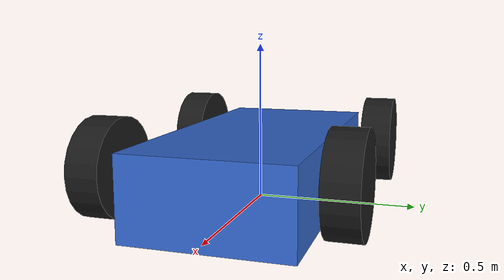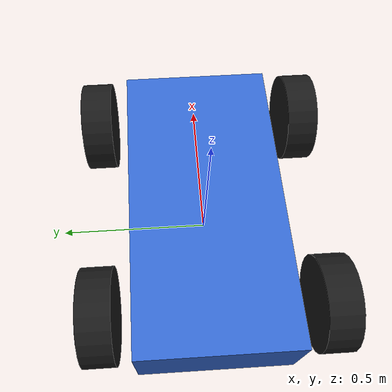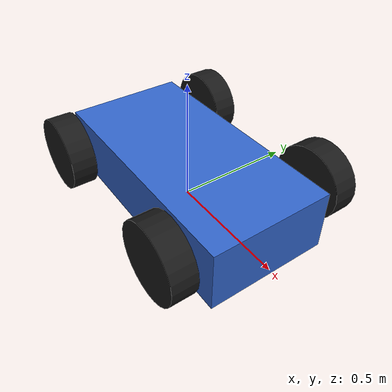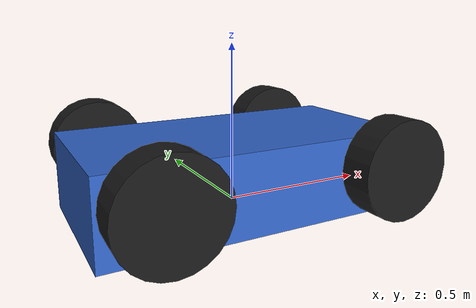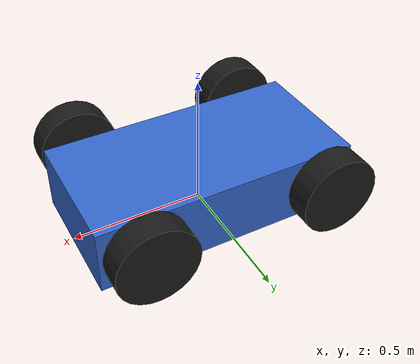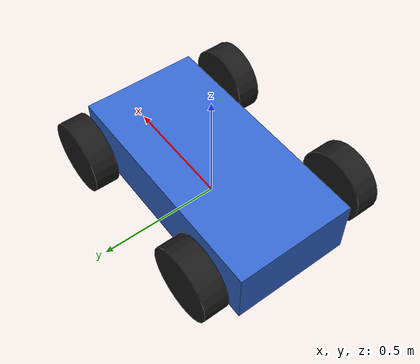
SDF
<?xml version="1.0" ?>
<!--
  Simple Ackermann-steered ego vehicle for ADAS smoke tests.

  Control topic: /model/ego_vehicle/cmd_vel (gz.msgs.Twist)
  Odometry topic: /model/ego_vehicle/odometry (gz.msgs.Odometry)
-->
<sdf version="1.6">
  <model name="ego_vehicle">
    <pose>0 0 0 0 0 0</pose>

    <link name="chassis">
      <pose>0 0 0.1 0 0 0</pose>
      <inertial>
        <mass>5.0</mass>
        <inertia>
          <ixx>0.1</ixx>
          <ixy>0</ixy>
          <ixz>0</ixz>
          <iyy>0.2</iyy>
          <iyz>0</iyz>
          <izz>0.3</izz>
        </inertia>
      </inertial>
      <visual name="visual">
        <geometry>
          <box>
            <size>1.0 0.5 0.25</size>
          </box>
        </geometry>
        <material>
          <ambient>0.2 0.4 0.8 1</ambient>
          <diffuse>0.2 0.4 0.8 1</diffuse>
          <specular>0.1 0.1 0.1 1</specular>
        </material>
      </visual>
      <collision name="collision">
        <geometry>
          <box>
            <size>1.0 0.5 0.25</size>
          </box>
        </geometry>
      </collision>
    </link>

    <link name="front_left_wheel">
      <pose>0.35 0.35 0.15 -1.5707 0 0</pose>
      <inertial>
        <mass>0.5</mass>
        <inertia>
          <ixx>0.005</ixx>
          <ixy>0</ixy>
          <ixz>0</ixz>
          <iyy>0.005</iyy>
          <iyz>0</iyz>
          <izz>0.004</izz>
        </inertia>
      </inertial>
      <visual name="visual">
        <geometry>
          <cylinder>
            <length>0.1</length>
            <radius>0.15</radius>
          </cylinder>
        </geometry>
        <material>
          <ambient>0.1 0.1 0.1 1</ambient>
          <diffuse>0.1 0.1 0.1 1</diffuse>
          <specular>0.1 0.1 0.1 1</specular>
        </material>
      </visual>
      <collision name="collision">
        <geometry>
          <cylinder>
            <length>0.1</length>
            <radius>0.15</radius>
          </cylinder>
        </geometry>
        <surface>
          <friction>
            <ode>
              <mu>0.8</mu>
              <mu2>0.8</mu2>
              <fdir1>0 0 1</fdir1>
            </ode>
          </friction>
        </surface>
      </collision>
    </link>

    <link name="front_right_wheel">
      <pose>0.35 -0.35 0.15 -1.5707 0 0</pose>
      <inertial>
        <mass>0.5</mass>
        <inertia>
          <ixx>0.005</ixx>
          <ixy>0</ixy>
          <ixz>0</ixz>
          <iyy>0.005</iyy>
          <iyz>0</iyz>
          <izz>0.004</izz>
        </inertia>
      </inertial>
      <visual name="visual">
        <geometry>
          <cylinder>
            <length>0.1</length>
            <radius>0.15</radius>
          </cylinder>
        </geometry>
        <material>
          <ambient>0.1 0.1 0.1 1</ambient>
          <diffuse>0.1 0.1 0.1 1</diffuse>
          <specular>0.1 0.1 0.1 1</specular>
        </material>
      </visual>
      <collision name="collision">
        <geometry>
          <cylinder>
            <length>0.1</length>
            <radius>0.15</radius>
          </cylinder>
        </geometry>
        <surface>
          <friction>
            <ode>
              <mu>0.8</mu>
              <mu2>0.8</mu2>
              <fdir1>0 0 1</fdir1>
            </ode>
          </friction>
        </surface>
      </collision>
    </link>

    <link name="rear_left_wheel">
      <pose>-0.35 0.35 0.15 -1.5707 0 0</pose>
      <inertial>
        <mass>0.5</mass>
        <inertia>
          <ixx>0.005</ixx>
          <ixy>0</ixy>
          <ixz>0</ixz>
          <iyy>0.005</iyy>
          <iyz>0</iyz>
          <izz>0.004</izz>
        </inertia>
      </inertial>
      <visual name="visual">
        <geometry>
          <cylinder>
            <length>0.1</length>
            <radius>0.15</radius>
          </cylinder>
        </geometry>
        <material>
          <ambient>0.1 0.1 0.1 1</ambient>
          <diffuse>0.1 0.1 0.1 1</diffuse>
          <specular>0.1 0.1 0.1 1</specular>
        </material>
      </visual>
      <collision name="collision">
        <geometry>
          <cylinder>
            <length>0.1</length>
            <radius>0.15</radius>
          </cylinder>
        </geometry>
        <surface>
          <friction>
            <ode>
              <mu>0.8</mu>
              <mu2>0.8</mu2>
              <fdir1>0 0 1</fdir1>
            </ode>
          </friction>
        </surface>
      </collision>
    </link>

    <link name="rear_right_wheel">
      <pose>-0.35 -0.35 0.15 -1.5707 0 0</pose>
      <inertial>
        <mass>0.5</mass>
        <inertia>
          <ixx>0.005</ixx>
          <ixy>0</ixy>
          <ixz>0</ixz>
          <iyy>0.005</iyy>
          <iyz>0</iyz>
          <izz>0.004</izz>
        </inertia>
      </inertial>
      <visual name="visual">
        <geometry>
          <cylinder>
            <length>0.1</length>
            <radius>0.15</radius>
          </cylinder>
        </geometry>
        <material>
          <ambient>0.1 0.1 0.1 1</ambient>
          <diffuse>0.1 0.1 0.1 1</diffuse>
          <specular>0.1 0.1 0.1 1</specular>
        </material>
      </visual>
      <collision name="collision">
        <geometry>
          <cylinder>
            <length>0.1</length>
            <radius>0.15</radius>
          </cylinder>
        </geometry>
        <surface>
          <friction>
            <ode>
              <mu>0.8</mu>
              <mu2>0.8</mu2>
              <fdir1>0 0 1</fdir1>
            </ode>
          </friction>
        </surface>
      </collision>
    </link>

    <link name="front_left_steering_link">
      <pose>0.35 0.25 0.15 0 0 0</pose>
      <inertial>
        <mass>0.1</mass>
        <inertia>
          <ixx>0.001</ixx>
          <iyy>0.001</iyy>
          <izz>0.001</izz>
        </inertia>
      </inertial>
    </link>

    <link name="front_right_steering_link">
      <pose>0.35 -0.25 0.15 0 0 0</pose>
      <inertial>
        <mass>0.1</mass>
        <inertia>
          <ixx>0.001</ixx>
          <iyy>0.001</iyy>
          <izz>0.001</izz>
        </inertia>
      </inertial>
    </link>

    <joint name="front_left_steering_joint" type="revolute">
      <parent>chassis</parent>
      <child>front_left_steering_link</child>
      <axis>
        <xyz>0 0 1</xyz>
        <limit>
          <lower>-0.6</lower>
          <upper>0.6</upper>
          <velocity>2.0</velocity>
          <effort>10</effort>
        </limit>
        <use_parent_model_frame>1</use_parent_model_frame>
      </axis>
    </joint>

    <joint name="front_right_steering_joint" type="revolute">
      <parent>chassis</parent>
      <child>front_right_steering_link</child>
      <axis>
        <xyz>0 0 1</xyz>
        <limit>
          <lower>-0.6</lower>
          <upper>0.6</upper>
          <velocity>2.0</velocity>
          <effort>10</effort>
        </limit>
        <use_parent_model_frame>1</use_parent_model_frame>
      </axis>
    </joint>

    <joint name="front_left_wheel_joint" type="revolute">
      <parent>front_left_steering_link</parent>
      <child>front_left_wheel</child>
      <axis>
        <xyz>0 0 1</xyz>
        <limit>
          <lower>-1e+16</lower>
          <upper>1e+16</upper>
        </limit>
      </axis>
    </joint>

    <joint name="front_right_wheel_joint" type="revolute">
      <parent>front_right_steering_link</parent>
      <child>front_right_wheel</child>
      <axis>
        <xyz>0 0 1</xyz>
        <limit>
          <lower>-1e+16</lower>
          <upper>1e+16</upper>
        </limit>
      </axis>
    </joint>

    <joint name="rear_left_wheel_joint" type="revolute">
      <parent>chassis</parent>
      <child>rear_left_wheel</child>
      <axis>
        <xyz>0 0 1</xyz>
        <limit>
          <lower>-1e+16</lower>
          <upper>1e+16</upper>
        </limit>
      </axis>
    </joint>

    <joint name="rear_right_wheel_joint" type="revolute">
      <parent>chassis</parent>
      <child>rear_right_wheel</child>
      <axis>
        <xyz>0 0 1</xyz>
        <limit>
          <lower>-1e+16</lower>
          <upper>1e+16</upper>
        </limit>
      </axis>
    </joint>

    <!-- Front-facing camera -->
    <link name="camera_link">
      <pose>0.45 0 0.25 0 0 0</pose>
      <inertial>
        <mass>0.05</mass>
        <inertia>
          <ixx>0.0001</ixx>
          <ixy>0</ixy>
          <ixz>0</ixz>
          <iyy>0.0001</iyy>
          <iyz>0</iyz>
          <izz>0.0001</izz>
        </inertia>
      </inertial>
      <sensor name="front_camera" type="camera">
        <always_on>1</always_on>
        <update_rate>30</update_rate>
        <camera>
          <horizontal_fov>1.3962634</horizontal_fov>
          <image>
            <width>640</width>
            <height>480</height>
            <format>R8G8B8</format>
          </image>
          <clip>
            <near>0.1</near>
            <far>100</far>
          </clip>
        </camera>
      </sensor>
    </link>
    <joint name="camera_joint" type="fixed">
      <parent>chassis</parent>
      <child>camera_link</child>
    </joint>

    <!-- Roof-mounted lidar -->
    <link name="lidar_link">
      <pose>0.0 0 0.35 0 0 0</pose>
      <inertial>
        <mass>0.05</mass>
        <inertia>
          <ixx>0.0001</ixx>
          <ixy>0</ixy>
          <ixz>0</ixz>
          <iyy>0.0001</iyy>
          <iyz>0</iyz>
          <izz>0.0001</izz>
        </inertia>
      </inertial>
      <sensor name="front_lidar" type="gpu_lidar">
        <always_on>1</always_on>
        <update_rate>10</update_rate>
        <lidar>
          <scan>
            <horizontal>
              <samples>360</samples>
              <resolution>1</resolution>
              <min_angle>-3.14159</min_angle>
              <max_angle>3.14159</max_angle>
            </horizontal>
            <vertical>
              <samples>1</samples>
              <resolution>1</resolution>
              <min_angle>0</min_angle>
              <max_angle>0</max_angle>
            </vertical>
          </scan>
          <range>
            <min>0.1</min>
            <max>50.0</max>
            <resolution>0.01</resolution>
          </range>
        </lidar>
      </sensor>
    </link>
    <joint name="lidar_joint" type="fixed">
      <parent>chassis</parent>
      <child>lidar_link</child>
    </joint>

    <plugin
      filename="gz-sim-ackermann-steering-system"
      name="gz::sim::systems::AckermannSteering">
      <left_joint>front_left_wheel_joint</left_joint>
      <left_joint>rear_left_wheel_joint</left_joint>
      <right_joint>front_right_wheel_joint</right_joint>
      <right_joint>rear_right_wheel_joint</right_joint>
      <left_steering_joint>front_left_steering_joint</left_steering_joint>
      <right_steering_joint>front_right_steering_joint</right_steering_joint>
      <kingpin_width>0.5</kingpin_width>
      <steering_limit>0.6</steering_limit>
      <wheel_base>0.7</wheel_base>
      <wheel_separation>0.7</wheel_separation>
      <wheel_radius>0.15</wheel_radius>
      <min_velocity>-2</min_velocity>
      <max_velocity>2</max_velocity>
      <min_acceleration>-5</min_acceleration>
      <max_acceleration>5</max_acceleration>
    </plugin>

  </model>
</sdf>
